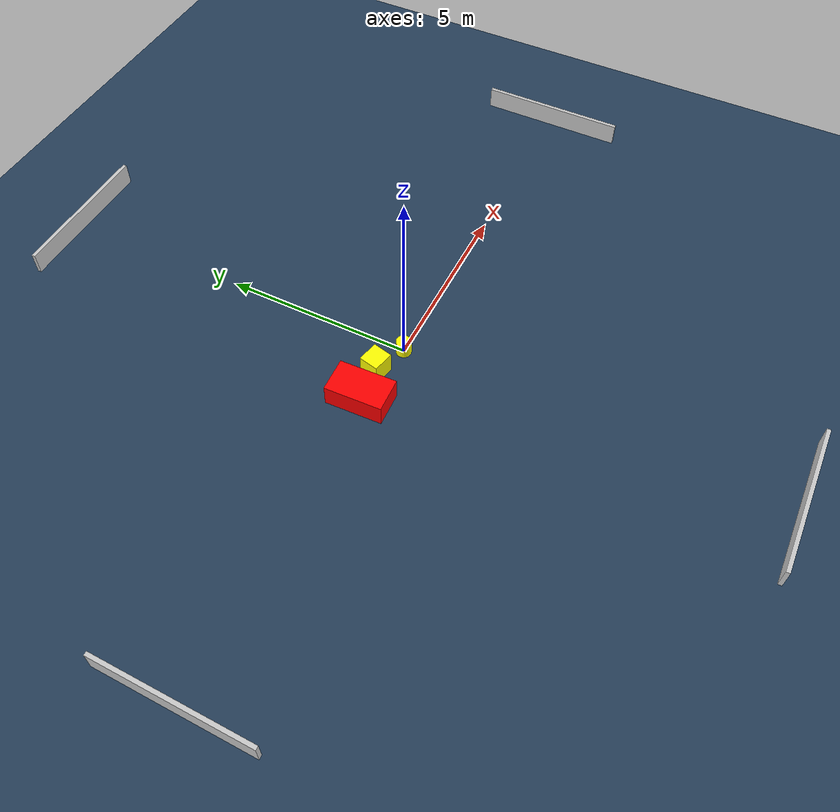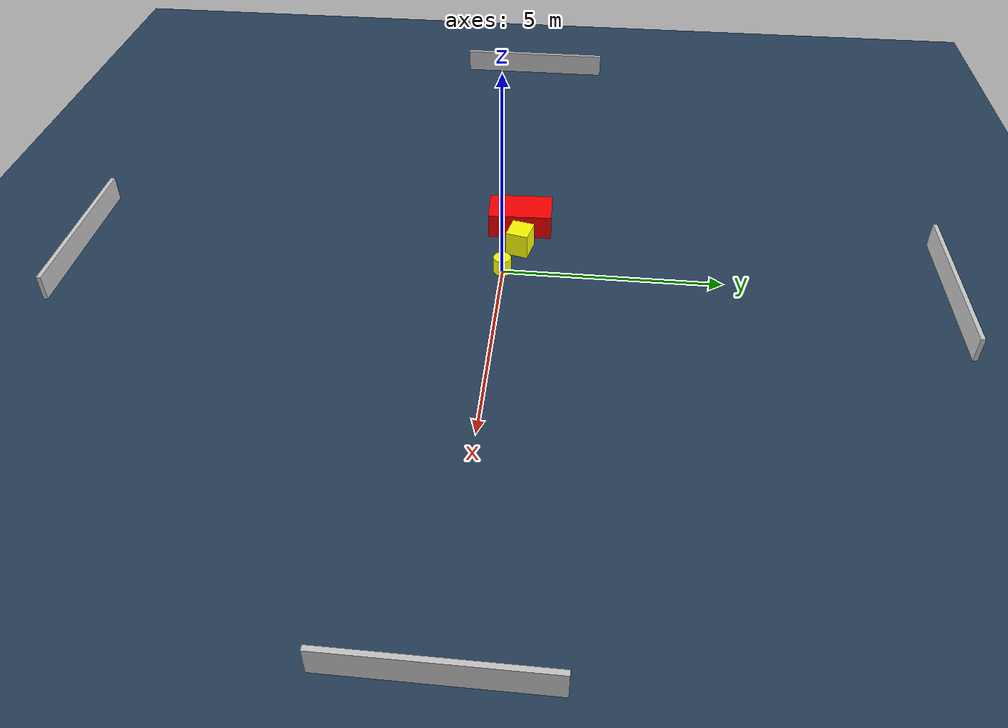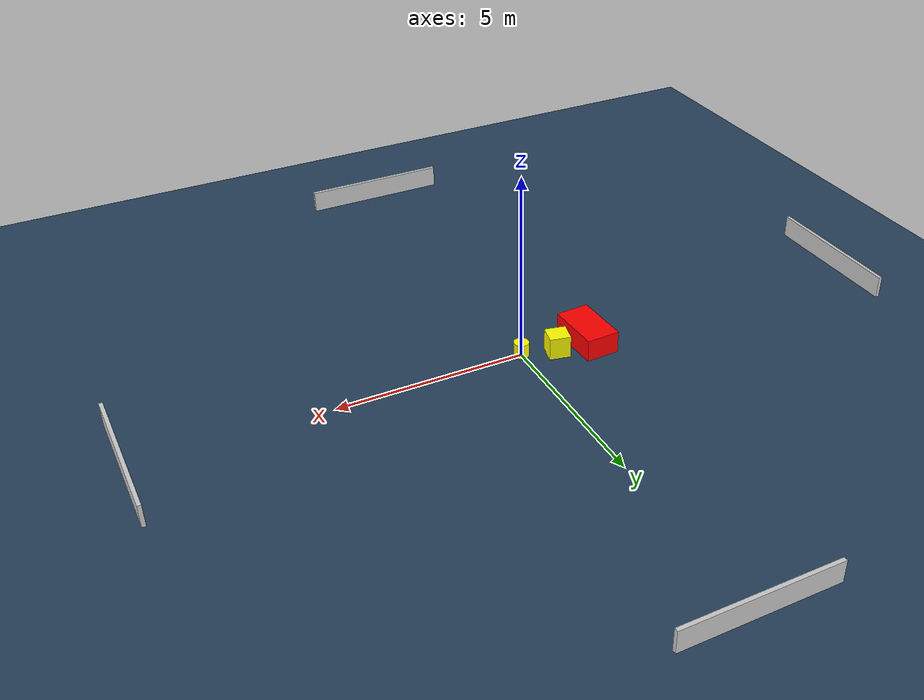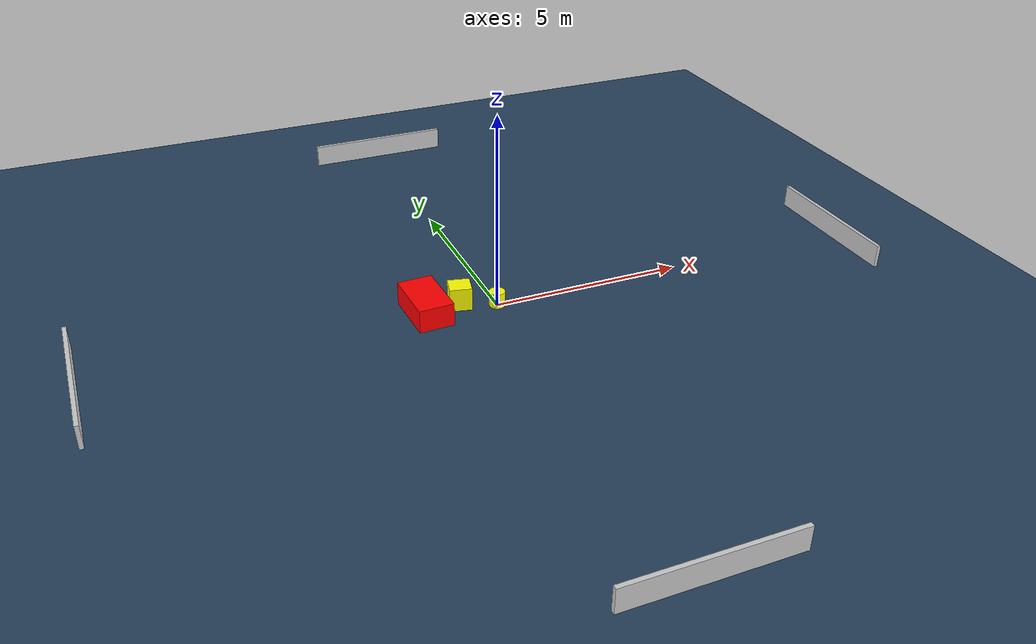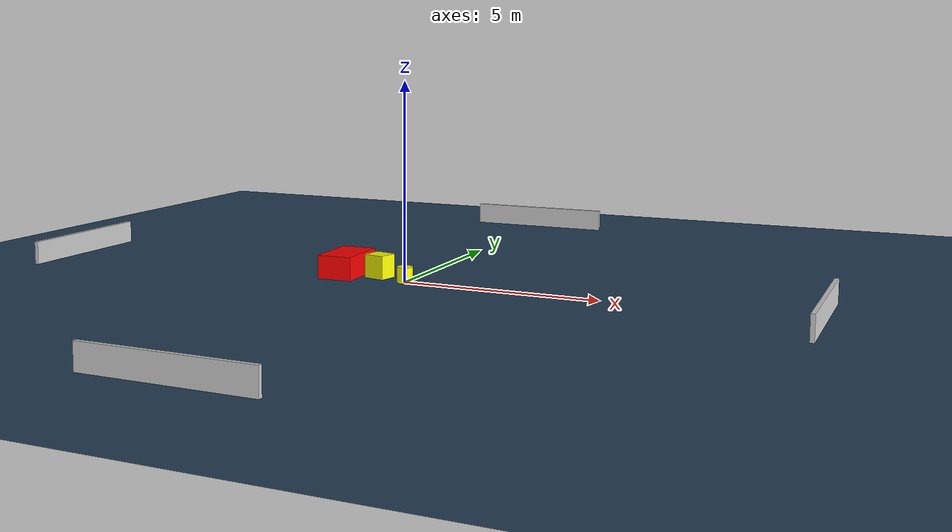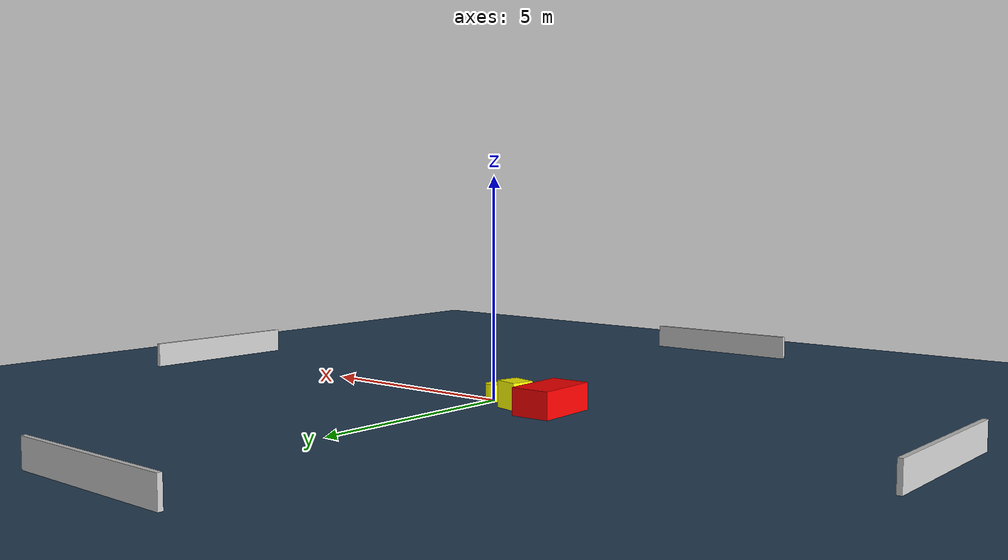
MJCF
<?xml version="1.0" ?>
<mujoco model="generated_environment">
  <option timestep="0.01" integrator="RK4" cone="elliptic"/>
  <default>
    <geom density="1"/>
  </default>
  <asset>
    <texture builtin="gradient" height="3072" name="skybox" rgb1="0.3 0.5 0.7" rgb2="0 0 0" type="skybox" width="512"/>
    <texture builtin="checker" height="300" name="groundplane" rgb1="0.2 0.3 0.4" rgb2="0.1 0.2 0.3" type="2d" width="300"/>
    <material name="groundplane" reflectance="0.2" texrepeat="5 5" texture="groundplane"/>
  </asset>
  <worldbody>
    <light dir="0 0 -1" directional="true" pos="0 0 1.5"/>
    <geom condim="3" friction="0.5 0.005 0.001" material="groundplane" name="floor" pos="0 0 0" size="0 0 0.05" type="plane"/>
    <body name="walls">
      <geom name="wall_1" condim="4" pos="-10.0 0.0 0.3" rgba="0.800000011920929 0.800000011920929 0.800000011920929 1.0" size="0.05 2.0 0.3" type="box"/>
      <geom name="wall_2" condim="4" pos="10.0 0.0 0.3" rgba="0.800000011920929 0.800000011920929 0.800000011920929 1.0" size="0.05 2.0 0.3" type="box"/>
      <geom name="wall_3" condim="4" pos="0.0 -10.0 0.3" rgba="0.800000011920929 0.800000011920929 0.800000011920929 1.0" size="2.0 0.05 0.3" type="box"/>
      <geom name="wall_4" condim="4" pos="0.0 10.0 0.3" rgba="0.800000011920929 0.800000011920929 0.800000011920929 1.0" size="2.0 0.05 0.3" type="box"/>
    </body>
    <body name="robot">
      <joint name="joint_x" type="slide" pos="0 0 0" axis="1 0 0"/>
      <joint name="joint_y" type="slide" pos="0 0 0" axis="0 1 0"/>
      <geom name="robot" type="cylinder" pos="0.0 0.0 0.2" size="0.2 0.2 0.0" mass="5.0" friction="1.0 0.005 0.0001" condim="4" rgba="1.0 1.0 0.0 1.0"/>
    </body>
    <body name="obstacle_1_movable">
      <geom name="obstacle_1_movable" condim="4" pos="-0.8669913490221292 0.3320325536383037 0.3" euler="0 0 77.16900895058754" friction="0.0 0.005 0.001" rgba="1.0 1.0 0.0 1.0" size="0.26047114601114413 0.2792979408639243 0.3" type="box" mass="0.1"/>
      <joint type="free"/>
    </body>
    <body name="obstacle_2_static">
      <geom name="obstacle_2_static" condim="4" pos="-1.780426190852406 0.2621885582457138 0.3" euler="0 0 272.4557336142311" friction="0.0 0.005 0.001" rgba="1.0 0.0 0.0 1.0" size="0.7501523095079086 0.44987675857686055 0.3" type="box"/>
    </body>
  </worldbody>
  <actuator>
    <motor name="actuator_x" joint="joint_x" gear="1" ctrlrange="-1 1"/>
    <motor name="actuator_y" joint="joint_y" gear="1" ctrlrange="-1 1"/>
  </actuator>
</mujoco>
